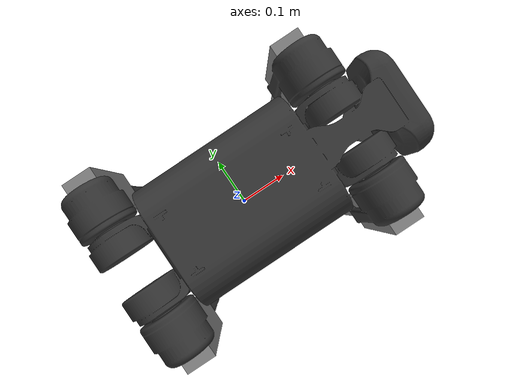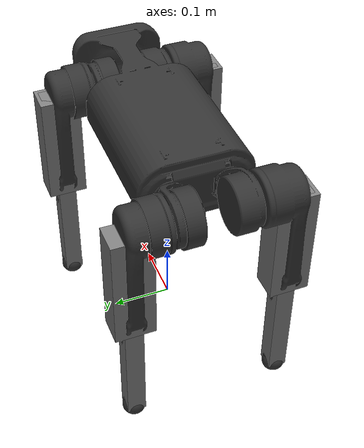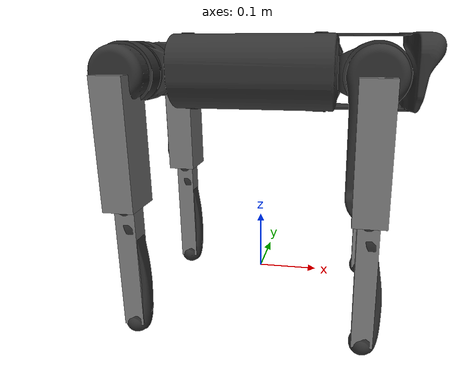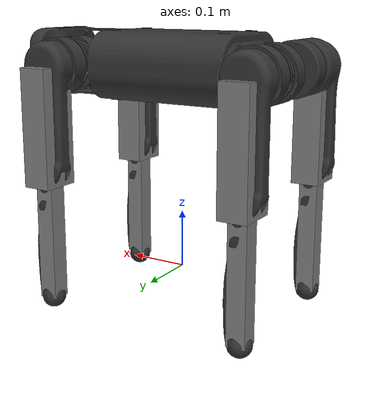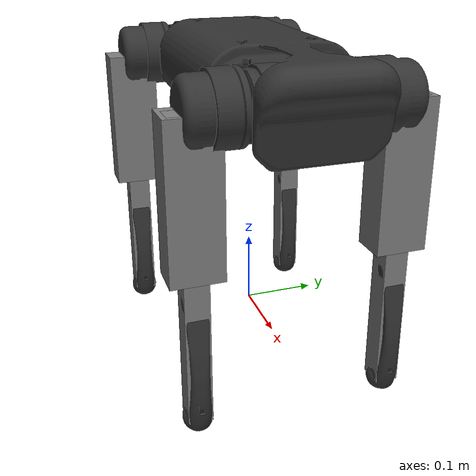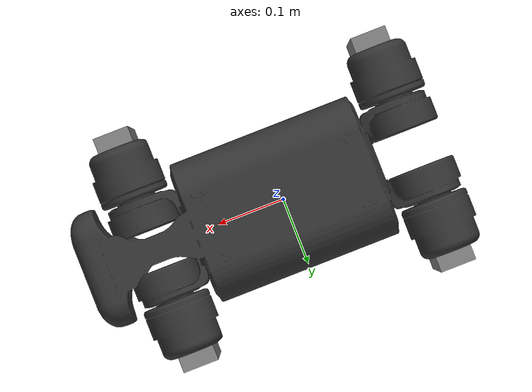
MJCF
<mujoco model="a1">
  <compiler angle="radian" meshdir="assets" autolimits="true"/>

  <default>
    <default class="a1">
      <default class="visual">
        <geom type="mesh" contype="0" conaffinity="0" group="2" material="dark"/>
      </default>
      <default class="collision">
        <geom group="3" contype="1" conaffinity="1"/>
      </default>
      <default class="thigh_collision">
        <geom type="box" size="0.0245 0.034 0.10" pos="0 0 -0.1"/>
      </default>
      <default class="calf_collision">
        <geom type="box" size="0.016 0.016 0.10" pos="0 0 -0.1"/>
      </default>
      <default class="foot_collision">
        <geom type="sphere" size="0.02"/>
      </default>
    </default>
  </default>

  <asset>
    <material name="dark" rgba="0.2 0.2 0.2 1"/>

    <mesh class="a1" name="trunk" file="trunk.stl"/>
    <mesh class="a1" name="hip" file="hip.stl"/>
    <mesh class="a1" name="thigh_mirror" file="thigh_mirror.stl"/>
    <mesh class="a1" name="calf" file="calf.stl"/>
    <mesh class="a1" name="thigh" file="thigh.stl"/>
  </asset>

  <worldbody>
    <body name="trunk" pos="0 0 0.35" childclass="a1">
      <light pos="0 0 2" mode="trackcom"/>
      <camera name="tracking" pos="0.846 -1.3 0.316" xyaxes="0.866 0.500 0.000 -0.171 0.296 0.940" mode="trackcom"/>
      <camera name="top" pos="-1 0 1" xyaxes="0 -1 0 0.7 0 0.7" mode="trackcom"/>
      <camera name="side" pos="0 -1 .3" xyaxes="1 0 0 0 1 2" mode="trackcom"/>
      <camera name="back" pos="-1 0 .3" xyaxes="0 -1 0 1 0 2" mode="trackcom"/>
      <site name="head" pos="0.3 0 0" rgba="1 0 0 1" size="0.02" group="5"/>
      <inertial pos="0.012731 0.002186 0.000515" mass="4.713"
        fullinertia="0.01683993 0.056579028 0.064713601 0.000083902 0.000597679 0.000025134"/>
      <freejoint name="floating_base_joint"/>
      <geom class="visual" mesh="trunk"/>
      <geom name="trunk_collision" class="collision" type="box" size="0.19 0.097 0.057" pos="0.1 0 0"/>
      <geom name="head_collision" class="collision" type="sphere" size="0.06" pos="0.27 0 0.03"/>
      <site name="imu" pos="0 0 0" group="5"/>

      <body name="FR_hip" pos="0.183 -0.047 0">
        <inertial pos="-0.003311 -0.000635 0.000031" mass="0.696"
          fullinertia="0.000469246 0.00080749 0.000552929 0.000009409 -0.000000342 0.000000466"/>
        <joint name="FR_hip_joint" axis="1 0 0" range="-0.802851455917 0.802851455917"/>
        <geom class="visual" mesh="hip" quat="0 1 0 0"/>
        <body name="FR_thigh" pos="0 -0.08505 0">
          <inertial pos="-0.003237 0.022327 -0.027326" mass="1.013"
            fullinertia="0.005529065 0.005139339 0.001367788 -0.000004825 0.000343869 -0.000022448"/>
          <joint name="FR_thigh_joint" axis="0 1 0" range="-1.0471975512 4.18879020479"/>
          <geom class="visual" mesh="thigh_mirror"/>
          <geom name="FR_thigh_collision1" class="thigh_collision"/>
          <geom name="FR_thigh_collision2" class="thigh_collision" pos="0 0 -0.05" size="0.018 0.028 0.05"/>
          <geom name="FR_thigh_collision3" class="thigh_collision" pos="0 0 -0.15" size="0.018 0.028 0.05"/>
          <body name="FR_calf" pos="0 0 -0.2">
            <inertial pos="0.006435 0 -0.107388" mass="0.166"
              fullinertia="0.002997972 0.003014022 0.000032426 0 -0.000141163 0"/>
            <joint name="FR_calf_joint" axis="0 1 0" range="-2.69653369433 -0.916297857297"/>
            <geom class="visual" mesh="calf"/>
            <geom name="FR_calf_collision1" class="calf_collision"/>
            <geom name="FR_calf_collision2" class="calf_collision" pos="0 0 -0.15" size="0.014 0.014 0.05"/>
            <geom name="FR_foot_collision" class="foot_collision" pos="0 0 -0.2"/>
            <site name="FR" pos="0 0 -0.2" type="sphere" size="0.02" group="5"/>
          </body>
        </body>
      </body>

      <body name="FL_hip" pos="0.183 0.047 0">
        <inertial pos="-0.003311 0.000635 0.000031" mass="0.696"
          fullinertia="0.000469246 0.00080749 0.000552929 -0.000009409 -0.000000342 -0.000000466"/>
        <joint name="FL_hip_joint" axis="1 0 0" range="-0.802851455917 0.802851455917"/>
        <geom class="visual" mesh="hip"/>
        <body name="FL_thigh" pos="0 0.08505 0">
          <inertial pos="-0.003237 -0.022327 -0.027326" mass="1.013"
            fullinertia="0.005529065 0.005139339 0.001367788 0.000004825 0.000343869 0.000022448"/>
          <joint name="FL_thigh_joint" axis="0 1 0" range="-1.0471975512 4.18879020479"/>
          <geom class="visual" mesh="thigh"/>
          <geom name="FL_thigh_collision1" class="thigh_collision"/>
          <geom name="FL_thigh_collision2" class="thigh_collision" pos="0 0 -0.05" size="0.018 0.028 0.05"/>
          <geom name="FL_thigh_collision3" class="thigh_collision" pos="0 0 -0.15" size="0.018 0.028 0.05"/>
          <body name="FL_calf" pos="0 0 -0.2">
            <inertial pos="0.006435 0 -0.107388" mass="0.166"
              fullinertia="0.002997972 0.003014022 0.000032426 0 -0.000141163 0"/>
            <joint name="FL_calf_joint" axis="0 1 0" range="-2.69653369433 -0.916297857297"/>
            <geom class="visual" mesh="calf"/>
            <geom name="FL_calf_collision1" class="calf_collision"/>
            <geom name="FL_calf_collision2" class="calf_collision" pos="0 0 -0.15" size="0.014 0.014 0.05"/>
            <geom name="FL_foot_collision" class="foot_collision" pos="0 0 -0.2"/>
            <site name="FL" pos="0 0 -0.2" type="sphere" size="0.02" group="5"/>
          </body>
        </body>
      </body>

      <body name="RR_hip" pos="-0.183 -0.047 0">
        <inertial pos="0.003311 -0.000635 0.000031" mass="0.696"
          fullinertia="0.000469246 0.00080749 0.000552929 -0.000009409 0.000000342 0.000000466"/>
        <joint name="RR_hip_joint" axis="1 0 0" range="-0.802851455917 0.802851455917"/>
        <geom class="visual" quat="0 0 0 -1" mesh="hip"/>
        <body name="RR_thigh" pos="0 -0.08505 0">
          <inertial pos="-0.003237 0.022327 -0.027326" mass="1.013"
            fullinertia="0.005529065 0.005139339 0.001367788 -0.000004825 0.000343869 -0.000022448"/>
          <joint name="RR_thigh_joint" axis="0 1 0" range="-1.0471975512 4.18879020479"/>
          <geom class="visual" mesh="thigh_mirror"/>
          <geom name="RR_thigh_collision1" class="thigh_collision"/>
          <geom name="RR_thigh_collision2" class="thigh_collision" pos="0 0 -0.05" size="0.018 0.028 0.05"/>
          <geom name="RR_thigh_collision3" class="thigh_collision" pos="0 0 -0.15" size="0.018 0.028 0.05"/>
          <body name="RR_calf" pos="0 0 -0.2">
            <inertial pos="0.006435 0 -0.107388" mass="0.166"
              fullinertia="0.002997972 0.003014022 0.000032426 0 -0.000141163 0"/>
            <joint name="RR_calf_joint" axis="0 1 0" range="-2.69653369433 -0.916297857297"/>
            <geom class="visual" mesh="calf"/>
            <geom name="RR_calf_collision1" class="calf_collision"/>
            <geom name="RR_calf_collision2" class="calf_collision" pos="0 0 -0.15" size="0.014 0.014 0.05"/>
            <geom name="RR_foot_collision" class="foot_collision" pos="0 0 -0.2"/>
            <site name="RR" pos="0 0 -0.2" type="sphere" size="0.02" group="5"/>
          </body>
        </body>
      </body>

      <body name="RL_hip" pos="-0.183 0.047 0">
        <inertial pos="0.003311 0.000635 0.000031" mass="0.696"
          fullinertia="0.000469246 0.00080749 0.000552929 0.000009409 0.000000342 -0.000000466"/>
        <joint name="RL_hip_joint" axis="1 0 0" range="-0.802851455917 0.802851455917"/>
        <geom class="visual" quat="0 0 1 0" mesh="hip"/>
        <body name="RL_thigh" pos="0 0.08505 0">
          <inertial pos="-0.003237 -0.022327 -0.027326" mass="1.013"
            fullinertia="0.005529065 0.005139339 0.001367788 0.000004825 0.000343869 0.000022448"/>
          <joint name="RL_thigh_joint" axis="0 1 0" range="-1.0471975512 4.18879020479"/>
          <geom class="visual" mesh="thigh"/>
          <geom name="RL_thigh_collision1" class="thigh_collision"/>
          <geom name="RL_thigh_collision2" class="thigh_collision" pos="0 0 -0.05" size="0.018 0.028 0.05"/>
          <geom name="RL_thigh_collision3" class="thigh_collision" pos="0 0 -0.15" size="0.018 0.028 0.05"/>
          <body name="RL_calf" pos="0 0 -0.2">
            <inertial pos="0.006435 0 -0.107388" mass="0.166"
              fullinertia="0.002997972 0.003014022 0.000032426 0 -0.000141163 0"/>
            <joint name="RL_calf_joint" axis="0 1 0" range="-2.69653369433 -0.916297857297"/>
            <geom class="visual" mesh="calf"/>
            <geom name="RL_calf_collision1" class="calf_collision"/>
            <geom name="RL_calf_collision2" class="calf_collision" pos="0 0 -0.15" size="0.014 0.014 0.05"/>
            <geom name="RL_foot_collision" class="foot_collision" pos="0 0 -0.2"/>
            <site name="RL" pos="0 0 -0.2" type="sphere" size="0.02" group="5"/>
          </body>
        </body>
      </body>
    </body>
  </worldbody>

  <sensor>
    <gyro name="imu_ang_vel" site="imu"/>
    <velocimeter name="imu_lin_vel" site="imu"/>
    <accelerometer name="imu_lin_acc" site="imu"/>
    <subtreeangmom name="root_angmom" body="trunk"/>
  </sensor>
</mujoco>
